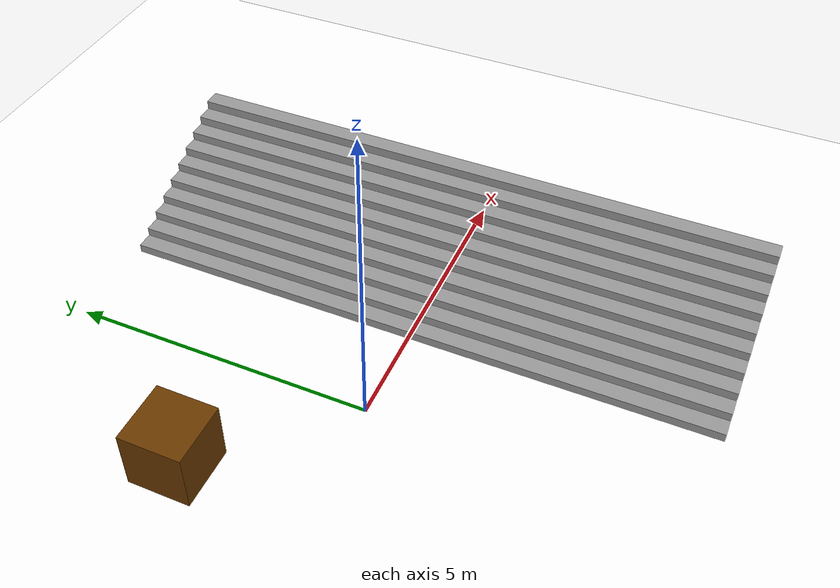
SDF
<?xml version="1.0" ?>
<sdf version="1.5">
    <world name="default">

        <physics type="ode">
            <max_step_size>0.0005</max_step_size>
            <real_time_factor>1</real_time_factor>
            <real_time_update_rate>2000</real_time_update_rate>
            <gravity>0 0 -9.81</gravity>
            <ode>
                <solver>
                    <type>quick</type>
                    <iters>50</iters>
                    <sor>1.3</sor>
                </solver>
                <constraints>
                    <cfm>0.0</cfm>
                    <erp>0.2</erp>
                    <contact_max_correcting_vel>10.0</contact_max_correcting_vel>
                    <contact_surface_layer>0.001</contact_surface_layer>
                </constraints>
            </ode>
        </physics>

        <scene>
        <ambient>0.75 0.75 0.75 1</ambient>
        <background>0.92 0.92 0.95 1</background>
        <sky>
            <clouds>
                <speed>12</speed>
            </clouds>
        </sky>
        </scene>
        <!-- A global light source -->
        <include>
            <uri>model://sun</uri>
        </include>
        <!-- A white ground plane -->
        <model name="white_ground">
            <static>true</static>
            <link name="white_ground_link">
                <collision name="white_ground_collision">
                    <geometry>
                        <plane>
                            <normal>0 0 1</normal>
                            <size>200 200</size>
                        </plane>
                    </geometry>
                </collision>
                <visual name="white_ground_visual">
                    <geometry>
                        <plane>
                            <normal>0 0 1</normal>
                            <size>200 200</size>
                        </plane>
                    </geometry>
                    <material>
                        <ambient>1 1 1 1</ambient>
                        <diffuse>1 1 1 1</diffuse>
                        <specular>0.2 0.2 0.2 1</specular>
                    </material>
                </visual>
            </link>
        </model>
        <!-- environment blocks, obstacles or stairs -->
        <model name="static_environment">
        <static>true</static>
            <link name="static_box">
                <pose>-2 2 0.5 0 0 0</pose>
                <collision name="static_box_collision">
                    <geometry>
                        <box>
                            <size>1 1 1</size>
                        </box>
                    </geometry>
                </collision>
                <visual name="static_box_visual">
                    <geometry>
                        <box>
                            <size>1 1 1</size>
                        </box>
                    </geometry>
                    <material>
                        <ambient>0.2 0.2 0.2 1.0</ambient>
                        <diffuse>.421 0.225 0.0 1.0</diffuse>
                    </material>
                </visual>
            </link>

            <link name='Stairs'>
                <pose>3 0 0 0 0 0</pose>
                <scale>1 1 1</scale>
                <visual name='Stairs_Visual_0'>
                    <pose>-1.26 -0 0.075 0 -0 1.5708</pose>
                    <geometry>
                    <box>
                        <size>10 0.28 0.15</size>
                    </box>
                    </geometry>
                    <material>
                    <script>
                        <uri>file://media/materials/scripts/gazebo.material</uri>
                        <name>Gazebo/Grey</name>
                    </script>
                    <ambient>1 1 1 1</ambient>
                    </material>
                    <meta>
                    <layer>0</layer>
                    </meta>
                </visual>
                <collision name='Stairs_Collision_0'>
                    <geometry>
                    <box>
                        <size>10 0.28 0.15</size>
                    </box>
                    </geometry>
                    <pose>-1.26 -0 0.075 0 -0 1.5708</pose>
                </collision>
                <visual name='Stairs_Visual_1'>
                    <pose>-0.98 -0 0.225 0 -0 1.5708</pose>
                    <geometry>
                    <box>
                        <size>10 0.28 0.15</size>
                    </box>
                    </geometry>
                    <material>
                    <script>
                        <uri>file://media/materials/scripts/gazebo.material</uri>
                        <name>Gazebo/Grey</name>
                    </script>
                    <ambient>1 1 1 1</ambient>
                    </material>
                    <meta>
                    <layer>0</layer>
                    </meta>
                </visual>
                <collision name='Stairs_Collision_1'>
                    <geometry>
                    <box>
                        <size>10 0.28 0.15</size>
                    </box>
                    </geometry>
                    <pose>-0.98 -0 0.225 0 -0 1.5708</pose>
                </collision>
                <visual name='Stairs_Visual_2'>
                    <pose>-0.7 -0 0.375 0 -0 1.5708</pose>
                    <geometry>
                    <box>
                        <size>10 0.28 0.15</size>
                    </box>
                    </geometry>
                    <material>
                    <script>
                        <uri>file://media/materials/scripts/gazebo.material</uri>
                        <name>Gazebo/Grey</name>
                    </script>
                    <ambient>1 1 1 1</ambient>
                    </material>
                    <meta>
                    <layer>0</layer>
                    </meta>
                </visual>
                <collision name='Stairs_Collision_2'>
                    <geometry>
                    <box>
                        <size>10 0.28 0.15</size>
                    </box>
                    </geometry>
                    <pose>-0.7 -0 0.375 0 -0 1.5708</pose>
                </collision>
                <visual name='Stairs_Visual_3'>
                    <pose>-0.42 -0 0.525 0 -0 1.5708</pose>
                    <geometry>
                    <box>
                        <size>10 0.28 0.15</size>
                    </box>
                    </geometry>
                    <material>
                    <script>
                        <uri>file://media/materials/scripts/gazebo.material</uri>
                        <name>Gazebo/Grey</name>
                    </script>
                    <ambient>1 1 1 1</ambient>
                    </material>
                    <meta>
                    <layer>0</layer>
                    </meta>
                </visual>
                <collision name='Stairs_Collision_3'>
                    <geometry>
                    <box>
                        <size>10 0.28 0.15</size>
                    </box>
                    </geometry>
                    <pose>-0.42 -0 0.525 0 -0 1.5708</pose>
                </collision>
                <visual name='Stairs_Visual_4'>
                    <pose>-0.14 -0 0.675 0 -0 1.5708</pose>
                    <geometry>
                    <box>
                        <size>10 0.28 0.15</size>
                    </box>
                    </geometry>
                    <material>
                    <script>
                        <uri>file://media/materials/scripts/gazebo.material</uri>
                        <name>Gazebo/Grey</name>
                    </script>
                    <ambient>1 1 1 1</ambient>
                    </material>
                    <meta>
                    <layer>0</layer>
                    </meta>
                </visual>
                <collision name='Stairs_Collision_4'>
                    <geometry>
                    <box>
                        <size>10 0.28 0.15</size>
                    </box>
                    </geometry>
                    <pose>-0.14 -0 0.675 0 -0 1.5708</pose>
                </collision>
                <visual name='Stairs_Visual_5'>
                    <pose>0.14 0 0.825 0 -0 1.5708</pose>
                    <geometry>
                    <box>
                        <size>10 0.28 0.15</size>
                    </box>
                    </geometry>
                    <material>
                    <script>
                        <uri>file://media/materials/scripts/gazebo.material</uri>
                        <name>Gazebo/Grey</name>
                    </script>
                    <ambient>1 1 1 1</ambient>
                    </material>
                    <meta>
                    <layer>0</layer>
                    </meta>
                </visual>
                <collision name='Stairs_Collision_5'>
                    <geometry>
                    <box>
                        <size>10 0.28 0.15</size>
                    </box>
                    </geometry>
                    <pose>0.14 0 0.825 0 -0 1.5708</pose>
                </collision>
                <visual name='Stairs_Visual_6'>
                    <pose>0.42 0 0.975 0 -0 1.5708</pose>
                    <geometry>
                    <box>
                        <size>10 0.28 0.15</size>
                    </box>
                    </geometry>
                    <material>
                    <script>
                        <uri>file://media/materials/scripts/gazebo.material</uri>
                        <name>Gazebo/Grey</name>
                    </script>
                    <ambient>1 1 1 1</ambient>
                    </material>
                    <meta>
                    <layer>0</layer>
                    </meta>
                </visual>
                <collision name='Stairs_Collision_6'>
                    <geometry>
                    <box>
                        <size>10 0.28 0.15</size>
                    </box>
                    </geometry>
                    <pose>0.42 0 0.975 0 -0 1.5708</pose>
                </collision>
                <visual name='Stairs_Visual_7'>
                    <pose>0.7 0 1.125 0 -0 1.5708</pose>
                    <geometry>
                    <box>
                        <size>10 0.28 0.15</size>
                    </box>
                    </geometry>
                    <material>
                    <script>
                        <uri>file://media/materials/scripts/gazebo.material</uri>
                        <name>Gazebo/Grey</name>
                    </script>
                    <ambient>1 1 1 1</ambient>
                    </material>
                    <meta>
                    <layer>0</layer>
                    </meta>
                </visual>
                <collision name='Stairs_Collision_7'>
                    <geometry>
                    <box>
                        <size>10 0.28 0.15</size>
                    </box>
                    </geometry>
                    <pose>0.7 0 1.125 0 -0 1.5708</pose>
                </collision>
                <visual name='Stairs_Visual_8'>
                    <pose>0.98 0 1.275 0 -0 1.5708</pose>
                    <geometry>
                    <box>
                        <size>10 0.28 0.15</size>
                    </box>
                    </geometry>
                    <material>
                    <script>
                        <uri>file://media/materials/scripts/gazebo.material</uri>
                        <name>Gazebo/Grey</name>
                    </script>
                    <ambient>1 1 1 1</ambient>
                    </material>
                    <meta>
                    <layer>0</layer>
                    </meta>
                </visual>
                <collision name='Stairs_Collision_8'>
                    <geometry>
                    <box>
                        <size>10 0.28 0.15</size>
                    </box>
                    </geometry>
                    <pose>0.98 0 1.275 0 -0 1.5708</pose>
                </collision>
                <visual name='Stairs_Visual_9'>
                    <pose>1.26 0 1.425 0 -0 1.5708</pose>
                    <geometry>
                    <box>
                        <size>10 0.28 0.15</size>
                    </box>
                    </geometry>
                    <material>
                    <script>
                        <uri>file://media/materials/scripts/gazebo.material</uri>
                        <name>Gazebo/Grey</name>
                    </script>
                    <ambient>1 1 1 1</ambient>
                    </material>
                    <meta>
                    <layer>0</layer>
                    </meta>
                </visual>
                <collision name='Stairs_Collision_9'>
                    <geometry>
                    <box>
                        <size>10 0.28 0.15</size>
                    </box>
                    </geometry>
                    <pose>1.26 0 1.425 0 -0 1.5708</pose>
                </collision>
            </link>
        </model>

    </world>
</sdf>
